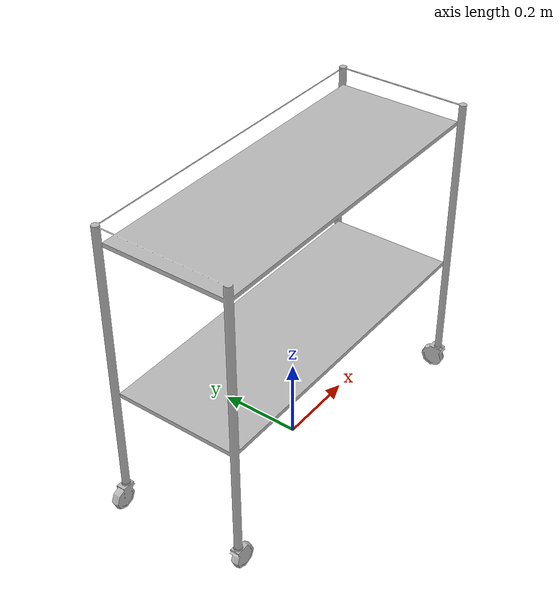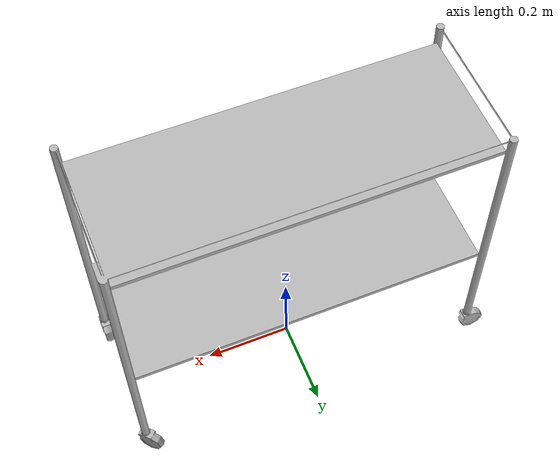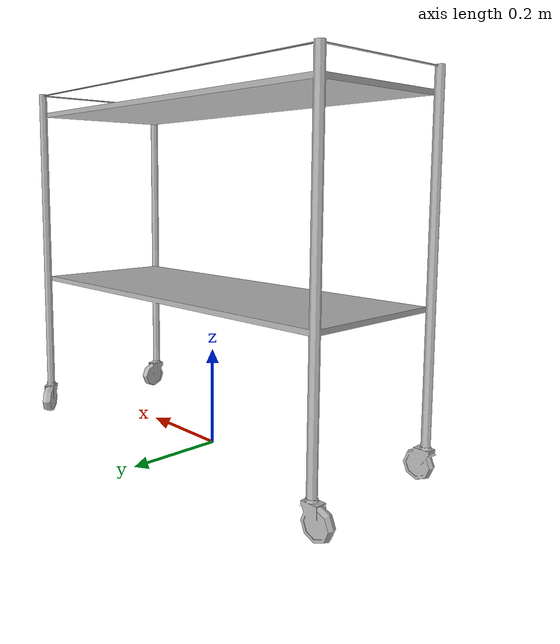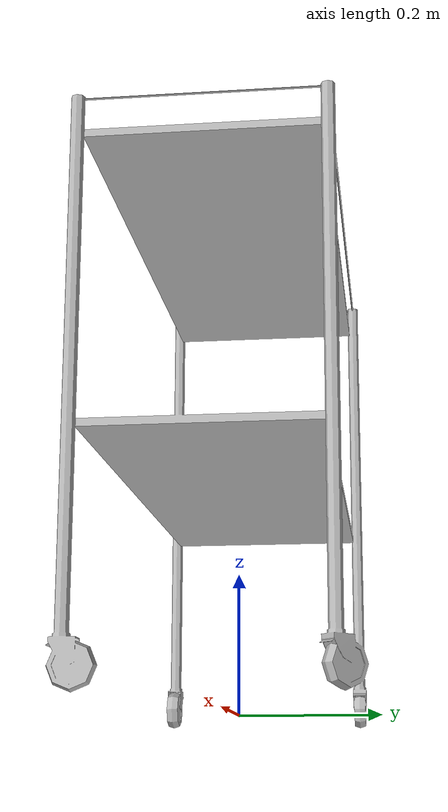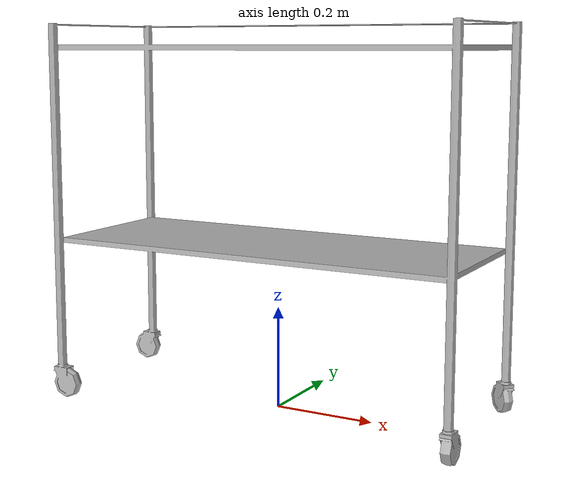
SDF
<sdf version="1.6">
  <model name="SurgicalTrolleyGuards">
   <static>true</static>
    <link name="body">
      <pose>0 0 0 0 0 0</pose>

      <visual name="visual">
        <geometry>
          <mesh>
            <uri>model://SurgicalTrolleyGuards/meshes/trolley.obj</uri>
          </mesh>
        </geometry>
      </visual>

      <collision name="collision">
        <geometry>
          <mesh>
            <uri>model://SurgicalTrolleyGuards/meshes/trolley.obj</uri>
          </mesh>
        </geometry>
      </collision>

    </link>
  </model>
</sdf>
